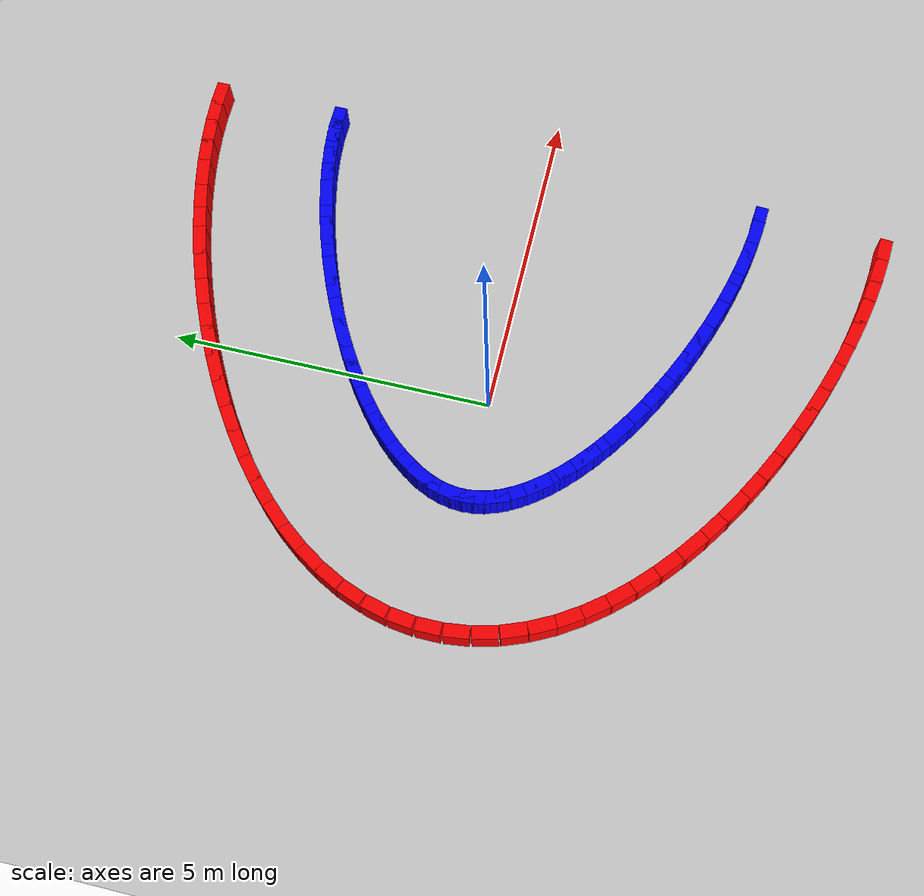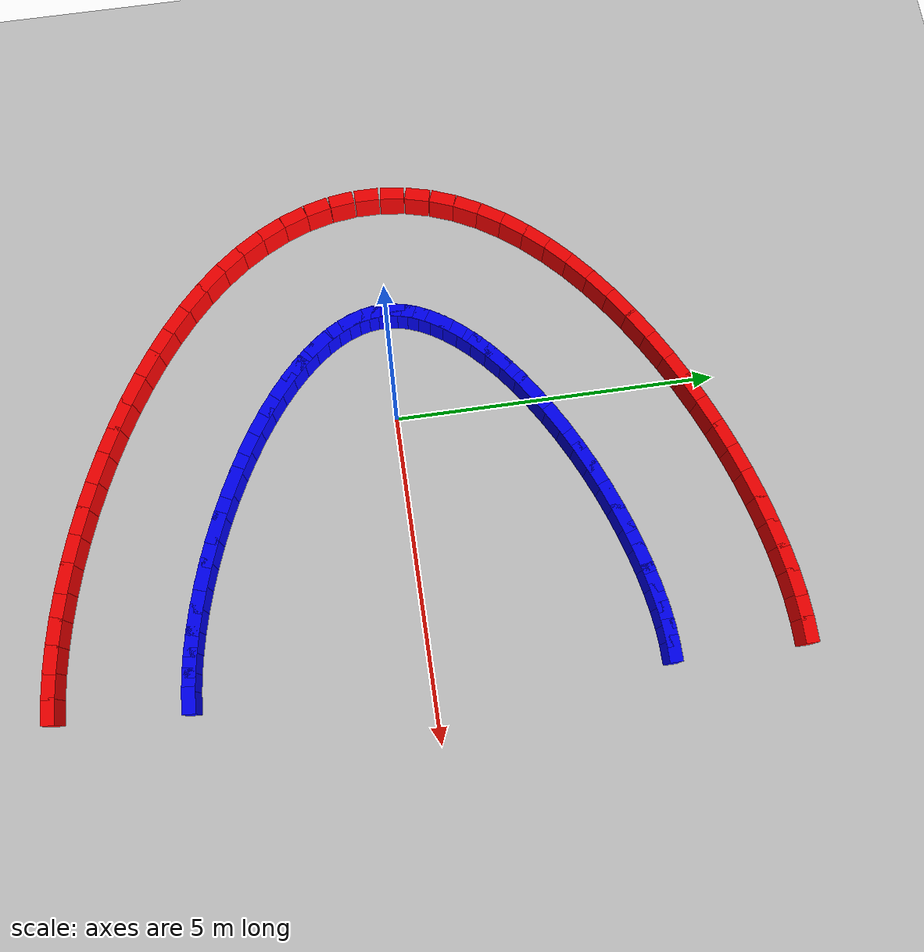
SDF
<sdf version="1.9">
 <world name="kidney_track">
  <model name="ground_plane">
   <static>true</static>
   <link name="link">
    <collision name="collision">
     <geometry><plane><normal>0 0 1</normal><size>100 100</size></plane></geometry>
    </collision>
    <visual name="visual">
     <geometry><plane><normal>0 0 1</normal><size>100 100</size></plane></geometry>
     <material><ambient>0.8 0.8 0.8 1</ambient><diffuse>0.8 0.8 0.8 1</diffuse></material>
    </visual>
   </link>
  </model>
  <model name="track">
   <static>true</static>
   <link name="outer_25">
    <pose>4.1250 5.5000 0.25 0 0 3.1416</pose>
    <collision name="col"><geometry><box><size>0.3916 0.2 0.5</size></box></geometry></collision>
    <visual name="vis">
     <geometry><box><size>0.3916 0.2 0.5</size></box></geometry>
     <material><ambient>1 0 0 1</ambient></material>
    </visual>
   </link>
   <link name="inner_25">
    <pose>4.1250 3.5000 0.25 0 0 3.1416</pose>
    <collision name="col"><geometry><box><size>0.3916 0.2 0.5</size></box></geometry></collision>
    <visual name="vis">
     <geometry><box><size>0.3916 0.2 0.5</size></box></geometry>
     <material><ambient>0 0 1 1</ambient></material>
    </visual>
   </link>
   <link name="outer_26">
    <pose>3.7745 5.4894 0.25 0 0 -3.0825</pose>
    <collision name="col"><geometry><box><size>0.4091 0.2 0.5</size></box></geometry></collision>
    <visual name="vis">
     <geometry><box><size>0.4091 0.2 0.5</size></box></geometry>
     <material><ambient>1 0 0 1</ambient></material>
    </visual>
   </link>
   <link name="inner_26">
    <pose>3.8927 3.4929 0.25 0 0 -3.0825</pose>
    <collision name="col"><geometry><box><size>0.4091 0.2 0.5</size></box></geometry></collision>
    <visual name="vis">
     <geometry><box><size>0.4091 0.2 0.5</size></box></geometry>
     <material><ambient>0 0 1 1</ambient></material>
    </visual>
   </link>
   <link name="outer_27">
    <pose>3.4141 5.4583 0.25 0 0 -3.0298</pose>
    <collision name="col"><geometry><box><size>0.4259 0.2 0.5</size></box></geometry></collision>
    <visual name="vis">
     <geometry><box><size>0.4259 0.2 0.5</size></box></geometry>
     <material><ambient>1 0 0 1</ambient></material>
    </visual>
   </link>
   <link name="inner_27">
    <pose>3.6372 3.4708 0.25 0 0 -3.0298</pose>
    <collision name="col"><geometry><box><size>0.4259 0.2 0.5</size></box></geometry></collision>
    <visual name="vis">
     <geometry><box><size>0.4259 0.2 0.5</size></box></geometry>
     <material><ambient>0 0 1 1</ambient></material>
    </visual>
   </link>
   <link name="outer_28">
    <pose>3.0442 5.4076 0.25 0 0 -2.9823</pose>
    <collision name="col"><geometry><box><size>0.4417 0.2 0.5</size></box></geometry></collision>
    <visual name="vis">
     <geometry><box><size>0.4417 0.2 0.5</size></box></geometry>
     <material><ambient>1 0 0 1</ambient></material>
    </visual>
   </link>
   <link name="inner_28">
    <pose>3.3614 3.4330 0.25 0 0 -2.9823</pose>
    <collision name="col"><geometry><box><size>0.4417 0.2 0.5</size></box></geometry></collision>
    <visual name="vis">
     <geometry><box><size>0.4417 0.2 0.5</size></box></geometry>
     <material><ambient>0 0 1 1</ambient></material>
    </visual>
   </link>
   <link name="outer_29">
    <pose>2.6653 5.3381 0.25 0 0 -2.9388</pose>
    <collision name="col"><geometry><box><size>0.4560 0.2 0.5</size></box></geometry></collision>
    <visual name="vis">
     <geometry><box><size>0.4560 0.2 0.5</size></box></geometry>
     <material><ambient>1 0 0 1</ambient></material>
    </visual>
   </link>
   <link name="inner_29">
    <pose>3.0681 3.3791 0.25 0 0 -2.9388</pose>
    <collision name="col"><geometry><box><size>0.4560 0.2 0.5</size></box></geometry></collision>
    <visual name="vis">
     <geometry><box><size>0.4560 0.2 0.5</size></box></geometry>
     <material><ambient>0 0 1 1</ambient></material>
    </visual>
   </link>
   <link name="outer_30">
    <pose>2.2787 5.2503 0.25 0 0 -2.8983</pose>
    <collision name="col"><geometry><box><size>0.4687 0.2 0.5</size></box></geometry></collision>
    <visual name="vis">
     <geometry><box><size>0.4687 0.2 0.5</size></box></geometry>
     <material><ambient>1 0 0 1</ambient></material>
    </visual>
   </link>
   <link name="inner_30">
    <pose>2.7605 3.3092 0.25 0 0 -2.8983</pose>
    <collision name="col"><geometry><box><size>0.4687 0.2 0.5</size></box></geometry></collision>
    <visual name="vis">
     <geometry><box><size>0.4687 0.2 0.5</size></box></geometry>
     <material><ambient>0 0 1 1</ambient></material>
    </visual>
   </link>
   <link name="outer_31">
    <pose>1.8855 5.1446 0.25 0 0 -2.8599</pose>
    <collision name="col"><geometry><box><size>0.4794 0.2 0.5</size></box></geometry></collision>
    <visual name="vis">
     <geometry><box><size>0.4794 0.2 0.5</size></box></geometry>
     <material><ambient>1 0 0 1</ambient></material>
    </visual>
   </link>
   <link name="inner_31">
    <pose>2.4415 3.2234 0.25 0 0 -2.8599</pose>
    <collision name="col"><geometry><box><size>0.4794 0.2 0.5</size></box></geometry></collision>
    <visual name="vis">
     <geometry><box><size>0.4794 0.2 0.5</size></box></geometry>
     <material><ambient>0 0 1 1</ambient></material>
    </visual>
   </link>
   <link name="outer_32">
    <pose>1.4877 5.0213 0.25 0 0 -2.8228</pose>
    <collision name="col"><geometry><box><size>0.4880 0.2 0.5</size></box></geometry></collision>
    <visual name="vis">
     <geometry><box><size>0.4880 0.2 0.5</size></box></geometry>
     <material><ambient>1 0 0 1</ambient></material>
    </visual>
   </link>
   <link name="inner_32">
    <pose>2.1145 3.1221 0.25 0 0 -2.8228</pose>
    <collision name="col"><geometry><box><size>0.4880 0.2 0.5</size></box></geometry></collision>
    <visual name="vis">
     <geometry><box><size>0.4880 0.2 0.5</size></box></geometry>
     <material><ambient>0 0 1 1</ambient></material>
    </visual>
   </link>
   <link name="outer_33">
    <pose>1.0871 4.8809 0.25 0 0 -2.7863</pose>
    <collision name="col"><geometry><box><size>0.4943 0.2 0.5</size></box></geometry></collision>
    <visual name="vis">
     <geometry><box><size>0.4943 0.2 0.5</size></box></geometry>
     <material><ambient>1 0 0 1</ambient></material>
    </visual>
   </link>
   <link name="inner_33">
    <pose>1.7828 3.0058 0.25 0 0 -2.7863</pose>
    <collision name="col"><geometry><box><size>0.4943 0.2 0.5</size></box></geometry></collision>
    <visual name="vis">
     <geometry><box><size>0.4943 0.2 0.5</size></box></geometry>
     <material><ambient>0 0 1 1</ambient></material>
    </visual>
   </link>
   <link name="outer_34">
    <pose>0.6859 4.7237 0.25 0 0 -2.7497</pose>
    <collision name="col"><geometry><box><size>0.4982 0.2 0.5</size></box></geometry></collision>
    <visual name="vis">
     <geometry><box><size>0.4982 0.2 0.5</size></box></geometry>
     <material><ambient>1 0 0 1</ambient></material>
    </visual>
   </link>
   <link name="inner_34">
    <pose>1.4497 2.8753 0.25 0 0 -2.7497</pose>
    <collision name="col"><geometry><box><size>0.4982 0.2 0.5</size></box></geometry></collision>
    <visual name="vis">
     <geometry><box><size>0.4982 0.2 0.5</size></box></geometry>
     <material><ambient>0 0 1 1</ambient></material>
    </visual>
   </link>
   <link name="outer_35">
    <pose>0.2865 4.5499 0.25 0 0 -2.7124</pose>
    <collision name="col"><geometry><box><size>0.4997 0.2 0.5</size></box></geometry></collision>
    <visual name="vis">
     <geometry><box><size>0.4997 0.2 0.5</size></box></geometry>
     <material><ambient>1 0 0 1</ambient></material>
    </visual>
   </link>
   <link name="inner_35">
    <pose>1.1187 2.7313 0.25 0 0 -2.7124</pose>
    <collision name="col"><geometry><box><size>0.4997 0.2 0.5</size></box></geometry></collision>
    <visual name="vis">
     <geometry><box><size>0.4997 0.2 0.5</size></box></geometry>
     <material><ambient>0 0 1 1</ambient></material>
    </visual>
   </link>
   <link name="outer_36">
    <pose>-0.1086 4.3599 0.25 0 0 -2.6738</pose>
    <collision name="col"><geometry><box><size>0.4988 0.2 0.5</size></box></geometry></collision>
    <visual name="vis">
     <geometry><box><size>0.4988 0.2 0.5</size></box></geometry>
     <material><ambient>1 0 0 1</ambient></material>
    </visual>
   </link>
   <link name="inner_36">
    <pose>0.7933 2.5748 0.25 0 0 -2.6738</pose>
    <collision name="col"><geometry><box><size>0.4988 0.2 0.5</size></box></geometry></collision>
    <visual name="vis">
     <geometry><box><size>0.4988 0.2 0.5</size></box></geometry>
     <material><ambient>0 0 1 1</ambient></material>
    </visual>
   </link>
   <link name="outer_37">
    <pose>-0.4967 4.1538 0.25 0 0 -2.6330</pose>
    <collision name="col"><geometry><box><size>0.4954 0.2 0.5</size></box></geometry></collision>
    <visual name="vis">
     <geometry><box><size>0.4954 0.2 0.5</size></box></geometry>
     <material><ambient>1 0 0 1</ambient></material>
    </visual>
   </link>
   <link name="inner_37">
    <pose>0.4771 2.4069 0.25 0 0 -2.6330</pose>
    <collision name="col"><geometry><box><size>0.4954 0.2 0.5</size></box></geometry></collision>
    <visual name="vis">
     <geometry><box><size>0.4954 0.2 0.5</size></box></geometry>
     <material><ambient>0 0 1 1</ambient></material>
    </visual>
   </link>
   <link name="outer_38">
    <pose>-0.8754 3.9319 0.25 0 0 -2.5895</pose>
    <collision name="col"><geometry><box><size>0.4898 0.2 0.5</size></box></geometry></collision>
    <visual name="vis">
     <geometry><box><size>0.4898 0.2 0.5</size></box></geometry>
     <material><ambient>1 0 0 1</ambient></material>
    </visual>
   </link>
   <link name="inner_38">
    <pose>0.1734 2.2290 0.25 0 0 -2.5895</pose>
    <collision name="col"><geometry><box><size>0.4898 0.2 0.5</size></box></geometry></collision>
    <visual name="vis">
     <geometry><box><size>0.4898 0.2 0.5</size></box></geometry>
     <material><ambient>0 0 1 1</ambient></material>
    </visual>
   </link>
   <link name="outer_39">
    <pose>-1.2420 3.6943 0.25 0 0 -2.5425</pose>
    <collision name="col"><geometry><box><size>0.4822 0.2 0.5</size></box></geometry></collision>
    <visual name="vis">
     <geometry><box><size>0.4822 0.2 0.5</size></box></geometry>
     <material><ambient>1 0 0 1</ambient></material>
    </visual>
   </link>
   <link name="inner_39">
    <pose>-0.1143 2.0425 0.25 0 0 -2.5425</pose>
    <collision name="col"><geometry><box><size>0.4822 0.2 0.5</size></box></geometry></collision>
    <visual name="vis">
     <geometry><box><size>0.4822 0.2 0.5</size></box></geometry>
     <material><ambient>0 0 1 1</ambient></material>
    </visual>
   </link>
   <link name="outer_40">
    <pose>-1.5937 3.4409 0.25 0 0 -2.4912</pose>
    <collision name="col"><geometry><box><size>0.4727 0.2 0.5</size></box></geometry></collision>
    <visual name="vis">
     <geometry><box><size>0.4727 0.2 0.5</size></box></geometry>
     <material><ambient>1 0 0 1</ambient></material>
    </visual>
   </link>
   <link name="inner_40">
    <pose>-0.3827 1.8492 0.25 0 0 -2.4912</pose>
    <collision name="col"><geometry><box><size>0.4727 0.2 0.5</size></box></geometry></collision>
    <visual name="vis">
     <geometry><box><size>0.4727 0.2 0.5</size></box></geometry>
     <material><ambient>0 0 1 1</ambient></material>
    </visual>
   </link>
   <link name="outer_41">
    <pose>-1.9281 3.1715 0.25 0 0 -2.4346</pose>
    <collision name="col"><geometry><box><size>0.4618 0.2 0.5</size></box></geometry></collision>
    <visual name="vis">
     <geometry><box><size>0.4618 0.2 0.5</size></box></geometry>
     <material><ambient>1 0 0 1</ambient></material>
    </visual>
   </link>
   <link name="inner_41">
    <pose>-0.6289 1.6509 0.25 0 0 -2.4346</pose>
    <collision name="col"><geometry><box><size>0.4618 0.2 0.5</size></box></geometry></collision>
    <visual name="vis">
     <geometry><box><size>0.4618 0.2 0.5</size></box></geometry>
     <material><ambient>0 0 1 1</ambient></material>
    </visual>
   </link>
   <link name="outer_42">
    <pose>-2.2422 2.8859 0.25 0 0 -2.3717</pose>
    <collision name="col"><geometry><box><size>0.4497 0.2 0.5</size></box></geometry></collision>
    <visual name="vis">
     <geometry><box><size>0.4497 0.2 0.5</size></box></geometry>
     <material><ambient>1 0 0 1</ambient></material>
    </visual>
   </link>
   <link name="inner_42">
    <pose>-0.8501 1.4499 0.25 0 0 -2.3717</pose>
    <collision name="col"><geometry><box><size>0.4497 0.2 0.5</size></box></geometry></collision>
    <visual name="vis">
     <geometry><box><size>0.4497 0.2 0.5</size></box></geometry>
     <material><ambient>0 0 1 1</ambient></material>
    </visual>
   </link>
   <link name="outer_43">
    <pose>-2.5335 2.5835 0.25 0 0 -2.3016</pose>
    <collision name="col"><geometry><box><size>0.4371 0.2 0.5</size></box></geometry></collision>
    <visual name="vis">
     <geometry><box><size>0.4371 0.2 0.5</size></box></geometry>
     <material><ambient>1 0 0 1</ambient></material>
    </visual>
   </link>
   <link name="inner_43">
    <pose>-1.0442 1.2486 0.25 0 0 -2.3016</pose>
    <collision name="col"><geometry><box><size>0.4371 0.2 0.5</size></box></geometry></collision>
    <visual name="vis">
     <geometry><box><size>0.4371 0.2 0.5</size></box></geometry>
     <material><ambient>0 0 1 1</ambient></material>
    </visual>
   </link>
   <link name="outer_44">
    <pose>-2.7987 2.2637 0.25 0 0 -2.2232</pose>
    <collision name="col"><geometry><box><size>0.4245 0.2 0.5</size></box></geometry></collision>
    <visual name="vis">
     <geometry><box><size>0.4245 0.2 0.5</size></box></geometry>
     <material><ambient>1 0 0 1</ambient></material>
    </visual>
   </link>
   <link name="inner_44">
    <pose>-1.2095 1.0494 0.25 0 0 -2.2232</pose>
    <collision name="col"><geometry><box><size>0.4245 0.2 0.5</size></box></geometry></collision>
    <visual name="vis">
     <geometry><box><size>0.4245 0.2 0.5</size></box></geometry>
     <material><ambient>0 0 1 1</ambient></material>
    </visual>
   </link>
   <link name="outer_45">
    <pose>-3.0345 1.9260 0.25 0 0 -2.1358</pose>
    <collision name="col"><geometry><box><size>0.4124 0.2 0.5</size></box></geometry></collision>
    <visual name="vis">
     <geometry><box><size>0.4124 0.2 0.5</size></box></geometry>
     <material><ambient>1 0 0 1</ambient></material>
    </visual>
   </link>
   <link name="inner_45">
    <pose>-1.3453 0.8552 0.25 0 0 -2.1358</pose>
    <collision name="col"><geometry><box><size>0.4124 0.2 0.5</size></box></geometry></collision>
    <visual name="vis">
     <geometry><box><size>0.4124 0.2 0.5</size></box></geometry>
     <material><ambient>0 0 1 1</ambient></material>
    </visual>
   </link>
   <link name="outer_46">
    <pose>-3.2369 1.5702 0.25 0 0 -2.0388</pose>
    <collision name="col"><geometry><box><size>0.4016 0.2 0.5</size></box></geometry></collision>
    <visual name="vis">
     <geometry><box><size>0.4016 0.2 0.5</size></box></geometry>
     <material><ambient>1 0 0 1</ambient></material>
    </visual>
   </link>
   <link name="inner_46">
    <pose>-1.4520 0.6680 0.25 0 0 -2.0388</pose>
    <collision name="col"><geometry><box><size>0.4016 0.2 0.5</size></box></geometry></collision>
    <visual name="vis">
     <geometry><box><size>0.4016 0.2 0.5</size></box></geometry>
     <material><ambient>0 0 1 1</ambient></material>
    </visual>
   </link>
   <link name="outer_47">
    <pose>-3.4017 1.1969 0.25 0 0 -1.9323</pose>
    <collision name="col"><geometry><box><size>0.3927 0.2 0.5</size></box></geometry></collision>
    <visual name="vis">
     <geometry><box><size>0.3927 0.2 0.5</size></box></geometry>
     <material><ambient>1 0 0 1</ambient></material>
    </visual>
   </link>
   <link name="inner_47">
    <pose>-1.5309 0.4895 0.25 0 0 -1.9323</pose>
    <collision name="col"><geometry><box><size>0.3927 0.2 0.5</size></box></geometry></collision>
    <visual name="vis">
     <geometry><box><size>0.3927 0.2 0.5</size></box></geometry>
     <material><ambient>0 0 1 1</ambient></material>
    </visual>
   </link>
   <link name="outer_48">
    <pose>-3.5239 0.8080 0.25 0 0 -1.8173</pose>
    <collision name="col"><geometry><box><size>0.3864 0.2 0.5</size></box></geometry></collision>
    <visual name="vis">
     <geometry><box><size>0.3864 0.2 0.5</size></box></geometry>
     <material><ambient>1 0 0 1</ambient></material>
    </visual>
   </link>
   <link name="inner_48">
    <pose>-1.5844 0.3200 0.25 0 0 -1.8173</pose>
    <collision name="col"><geometry><box><size>0.3864 0.2 0.5</size></box></geometry></collision>
    <visual name="vis">
     <geometry><box><size>0.3864 0.2 0.5</size></box></geometry>
     <material><ambient>0 0 1 1</ambient></material>
    </visual>
   </link>
   <link name="outer_49">
    <pose>-3.5994 0.4073 0.25 0 0 -1.6958</pose>
    <collision name="col"><geometry><box><size>0.3831 0.2 0.5</size></box></geometry></collision>
    <visual name="vis">
     <geometry><box><size>0.3831 0.2 0.5</size></box></geometry>
     <material><ambient>1 0 0 1</ambient></material>
    </visual>
   </link>
   <link name="inner_49">
    <pose>-1.6151 0.1578 0.25 0 0 -1.6958</pose>
    <collision name="col"><geometry><box><size>0.3831 0.2 0.5</size></box></geometry></collision>
    <visual name="vis">
     <geometry><box><size>0.3831 0.2 0.5</size></box></geometry>
     <material><ambient>0 0 1 1</ambient></material>
    </visual>
   </link>
   <link name="outer_50">
    <pose>-3.6250 0.0000 0.25 0 0 -1.5708</pose>
    <collision name="col"><geometry><box><size>0.3831 0.2 0.5</size></box></geometry></collision>
    <visual name="vis">
     <geometry><box><size>0.3831 0.2 0.5</size></box></geometry>
     <material><ambient>1 0 0 1</ambient></material>
    </visual>
   </link>
   <link name="inner_50">
    <pose>-1.6250 0.0000 0.25 0 0 -1.5708</pose>
    <collision name="col"><geometry><box><size>0.3831 0.2 0.5</size></box></geometry></collision>
    <visual name="vis">
     <geometry><box><size>0.3831 0.2 0.5</size></box></geometry>
     <material><ambient>0 0 1 1</ambient></material>
    </visual>
   </link>
   <link name="outer_51">
    <pose>-3.5994 -0.4073 0.25 0 0 -1.4458</pose>
    <collision name="col"><geometry><box><size>0.3864 0.2 0.5</size></box></geometry></collision>
    <visual name="vis">
     <geometry><box><size>0.3864 0.2 0.5</size></box></geometry>
     <material><ambient>1 0 0 1</ambient></material>
    </visual>
   </link>
   <link name="inner_51">
    <pose>-1.6151 -0.1578 0.25 0 0 -1.4458</pose>
    <collision name="col"><geometry><box><size>0.3864 0.2 0.5</size></box></geometry></collision>
    <visual name="vis">
     <geometry><box><size>0.3864 0.2 0.5</size></box></geometry>
     <material><ambient>0 0 1 1</ambient></material>
    </visual>
   </link>
   <link name="outer_52">
    <pose>-3.5239 -0.8080 0.25 0 0 -1.3243</pose>
    <collision name="col"><geometry><box><size>0.3927 0.2 0.5</size></box></geometry></collision>
    <visual name="vis">
     <geometry><box><size>0.3927 0.2 0.5</size></box></geometry>
     <material><ambient>1 0 0 1</ambient></material>
    </visual>
   </link>
   <link name="inner_52">
    <pose>-1.5844 -0.3200 0.25 0 0 -1.3243</pose>
    <collision name="col"><geometry><box><size>0.3927 0.2 0.5</size></box></geometry></collision>
    <visual name="vis">
     <geometry><box><size>0.3927 0.2 0.5</size></box></geometry>
     <material><ambient>0 0 1 1</ambient></material>
    </visual>
   </link>
   <link name="outer_53">
    <pose>-3.4017 -1.1969 0.25 0 0 -1.2093</pose>
    <collision name="col"><geometry><box><size>0.4016 0.2 0.5</size></box></geometry></collision>
    <visual name="vis">
     <geometry><box><size>0.4016 0.2 0.5</size></box></geometry>
     <material><ambient>1 0 0 1</ambient></material>
    </visual>
   </link>
   <link name="inner_53">
    <pose>-1.5309 -0.4895 0.25 0 0 -1.2093</pose>
    <collision name="col"><geometry><box><size>0.4016 0.2 0.5</size></box></geometry></collision>
    <visual name="vis">
     <geometry><box><size>0.4016 0.2 0.5</size></box></geometry>
     <material><ambient>0 0 1 1</ambient></material>
    </visual>
   </link>
   <link name="outer_54">
    <pose>-3.2369 -1.5702 0.25 0 0 -1.1028</pose>
    <collision name="col"><geometry><box><size>0.4124 0.2 0.5</size></box></geometry></collision>
    <visual name="vis">
     <geometry><box><size>0.4124 0.2 0.5</size></box></geometry>
     <material><ambient>1 0 0 1</ambient></material>
    </visual>
   </link>
   <link name="inner_54">
    <pose>-1.4520 -0.6680 0.25 0 0 -1.1028</pose>
    <collision name="col"><geometry><box><size>0.4124 0.2 0.5</size></box></geometry></collision>
    <visual name="vis">
     <geometry><box><size>0.4124 0.2 0.5</size></box></geometry>
     <material><ambient>0 0 1 1</ambient></material>
    </visual>
   </link>
   <link name="outer_55">
    <pose>-3.0345 -1.9260 0.25 0 0 -1.0058</pose>
    <collision name="col"><geometry><box><size>0.4245 0.2 0.5</size></box></geometry></collision>
    <visual name="vis">
     <geometry><box><size>0.4245 0.2 0.5</size></box></geometry>
     <material><ambient>1 0 0 1</ambient></material>
    </visual>
   </link>
   <link name="inner_55">
    <pose>-1.3453 -0.8552 0.25 0 0 -1.0058</pose>
    <collision name="col"><geometry><box><size>0.4245 0.2 0.5</size></box></geometry></collision>
    <visual name="vis">
     <geometry><box><size>0.4245 0.2 0.5</size></box></geometry>
     <material><ambient>0 0 1 1</ambient></material>
    </visual>
   </link>
   <link name="outer_56">
    <pose>-2.7987 -2.2637 0.25 0 0 -0.9184</pose>
    <collision name="col"><geometry><box><size>0.4371 0.2 0.5</size></box></geometry></collision>
    <visual name="vis">
     <geometry><box><size>0.4371 0.2 0.5</size></box></geometry>
     <material><ambient>1 0 0 1</ambient></material>
    </visual>
   </link>
   <link name="inner_56">
    <pose>-1.2095 -1.0494 0.25 0 0 -0.9184</pose>
    <collision name="col"><geometry><box><size>0.4371 0.2 0.5</size></box></geometry></collision>
    <visual name="vis">
     <geometry><box><size>0.4371 0.2 0.5</size></box></geometry>
     <material><ambient>0 0 1 1</ambient></material>
    </visual>
   </link>
   <link name="outer_57">
    <pose>-2.5335 -2.5835 0.25 0 0 -0.8400</pose>
    <collision name="col"><geometry><box><size>0.4497 0.2 0.5</size></box></geometry></collision>
    <visual name="vis">
     <geometry><box><size>0.4497 0.2 0.5</size></box></geometry>
     <material><ambient>1 0 0 1</ambient></material>
    </visual>
   </link>
   <link name="inner_57">
    <pose>-1.0442 -1.2486 0.25 0 0 -0.8400</pose>
    <collision name="col"><geometry><box><size>0.4497 0.2 0.5</size></box></geometry></collision>
    <visual name="vis">
     <geometry><box><size>0.4497 0.2 0.5</size></box></geometry>
     <material><ambient>0 0 1 1</ambient></material>
    </visual>
   </link>
   <link name="outer_58">
    <pose>-2.2422 -2.8859 0.25 0 0 -0.7699</pose>
    <collision name="col"><geometry><box><size>0.4618 0.2 0.5</size></box></geometry></collision>
    <visual name="vis">
     <geometry><box><size>0.4618 0.2 0.5</size></box></geometry>
     <material><ambient>1 0 0 1</ambient></material>
    </visual>
   </link>
   <link name="inner_58">
    <pose>-0.8501 -1.4499 0.25 0 0 -0.7699</pose>
    <collision name="col"><geometry><box><size>0.4618 0.2 0.5</size></box></geometry></collision>
    <visual name="vis">
     <geometry><box><size>0.4618 0.2 0.5</size></box></geometry>
     <material><ambient>0 0 1 1</ambient></material>
    </visual>
   </link>
   <link name="outer_59">
    <pose>-1.9281 -3.1715 0.25 0 0 -0.7070</pose>
    <collision name="col"><geometry><box><size>0.4727 0.2 0.5</size></box></geometry></collision>
    <visual name="vis">
     <geometry><box><size>0.4727 0.2 0.5</size></box></geometry>
     <material><ambient>1 0 0 1</ambient></material>
    </visual>
   </link>
   <link name="inner_59">
    <pose>-0.6289 -1.6509 0.25 0 0 -0.7070</pose>
    <collision name="col"><geometry><box><size>0.4727 0.2 0.5</size></box></geometry></collision>
    <visual name="vis">
     <geometry><box><size>0.4727 0.2 0.5</size></box></geometry>
     <material><ambient>0 0 1 1</ambient></material>
    </visual>
   </link>
   <link name="outer_60">
    <pose>-1.5937 -3.4409 0.25 0 0 -0.6504</pose>
    <collision name="col"><geometry><box><size>0.4822 0.2 0.5</size></box></geometry></collision>
    <visual name="vis">
     <geometry><box><size>0.4822 0.2 0.5</size></box></geometry>
     <material><ambient>1 0 0 1</ambient></material>
    </visual>
   </link>
   <link name="inner_60">
    <pose>-0.3827 -1.8492 0.25 0 0 -0.6504</pose>
    <collision name="col"><geometry><box><size>0.4822 0.2 0.5</size></box></geometry></collision>
    <visual name="vis">
     <geometry><box><size>0.4822 0.2 0.5</size></box></geometry>
     <material><ambient>0 0 1 1</ambient></material>
    </visual>
   </link>
   <link name="outer_61">
    <pose>-1.2420 -3.6943 0.25 0 0 -0.5991</pose>
    <collision name="col"><geometry><box><size>0.4898 0.2 0.5</size></box></geometry></collision>
    <visual name="vis">
     <geometry><box><size>0.4898 0.2 0.5</size></box></geometry>
     <material><ambient>1 0 0 1</ambient></material>
    </visual>
   </link>
   <link name="inner_61">
    <pose>-0.1143 -2.0425 0.25 0 0 -0.5991</pose>
    <collision name="col"><geometry><box><size>0.4898 0.2 0.5</size></box></geometry></collision>
    <visual name="vis">
     <geometry><box><size>0.4898 0.2 0.5</size></box></geometry>
     <material><ambient>0 0 1 1</ambient></material>
    </visual>
   </link>
   <link name="outer_62">
    <pose>-0.8754 -3.9319 0.25 0 0 -0.5520</pose>
    <collision name="col"><geometry><box><size>0.4954 0.2 0.5</size></box></geometry></collision>
    <visual name="vis">
     <geometry><box><size>0.4954 0.2 0.5</size></box></geometry>
     <material><ambient>1 0 0 1</ambient></material>
    </visual>
   </link>
   <link name="inner_62">
    <pose>0.1734 -2.2290 0.25 0 0 -0.5520</pose>
    <collision name="col"><geometry><box><size>0.4954 0.2 0.5</size></box></geometry></collision>
    <visual name="vis">
     <geometry><box><size>0.4954 0.2 0.5</size></box></geometry>
     <material><ambient>0 0 1 1</ambient></material>
    </visual>
   </link>
   <link name="outer_63">
    <pose>-0.4967 -4.1538 0.25 0 0 -0.5086</pose>
    <collision name="col"><geometry><box><size>0.4988 0.2 0.5</size></box></geometry></collision>
    <visual name="vis">
     <geometry><box><size>0.4988 0.2 0.5</size></box></geometry>
     <material><ambient>1 0 0 1</ambient></material>
    </visual>
   </link>
   <link name="inner_63">
    <pose>0.4771 -2.4069 0.25 0 0 -0.5086</pose>
    <collision name="col"><geometry><box><size>0.4988 0.2 0.5</size></box></geometry></collision>
    <visual name="vis">
     <geometry><box><size>0.4988 0.2 0.5</size></box></geometry>
     <material><ambient>0 0 1 1</ambient></material>
    </visual>
   </link>
   <link name="outer_64">
    <pose>-0.1086 -4.3599 0.25 0 0 -0.4678</pose>
    <collision name="col"><geometry><box><size>0.4997 0.2 0.5</size></box></geometry></collision>
    <visual name="vis">
     <geometry><box><size>0.4997 0.2 0.5</size></box></geometry>
     <material><ambient>1 0 0 1</ambient></material>
    </visual>
   </link>
   <link name="inner_64">
    <pose>0.7933 -2.5748 0.25 0 0 -0.4678</pose>
    <collision name="col"><geometry><box><size>0.4997 0.2 0.5</size></box></geometry></collision>
    <visual name="vis">
     <geometry><box><size>0.4997 0.2 0.5</size></box></geometry>
     <material><ambient>0 0 1 1</ambient></material>
    </visual>
   </link>
   <link name="outer_65">
    <pose>0.2865 -4.5499 0.25 0 0 -0.4291</pose>
    <collision name="col"><geometry><box><size>0.4982 0.2 0.5</size></box></geometry></collision>
    <visual name="vis">
     <geometry><box><size>0.4982 0.2 0.5</size></box></geometry>
     <material><ambient>1 0 0 1</ambient></material>
    </visual>
   </link>
   <link name="inner_65">
    <pose>1.1187 -2.7313 0.25 0 0 -0.4291</pose>
    <collision name="col"><geometry><box><size>0.4982 0.2 0.5</size></box></geometry></collision>
    <visual name="vis">
     <geometry><box><size>0.4982 0.2 0.5</size></box></geometry>
     <material><ambient>0 0 1 1</ambient></material>
    </visual>
   </link>
   <link name="outer_66">
    <pose>0.6859 -4.7237 0.25 0 0 -0.3918</pose>
    <collision name="col"><geometry><box><size>0.4943 0.2 0.5</size></box></geometry></collision>
    <visual name="vis">
     <geometry><box><size>0.4943 0.2 0.5</size></box></geometry>
     <material><ambient>1 0 0 1</ambient></material>
    </visual>
   </link>
   <link name="inner_66">
    <pose>1.4497 -2.8753 0.25 0 0 -0.3918</pose>
    <collision name="col"><geometry><box><size>0.4943 0.2 0.5</size></box></geometry></collision>
    <visual name="vis">
     <geometry><box><size>0.4943 0.2 0.5</size></box></geometry>
     <material><ambient>0 0 1 1</ambient></material>
    </visual>
   </link>
   <link name="outer_67">
    <pose>1.0871 -4.8809 0.25 0 0 -0.3553</pose>
    <collision name="col"><geometry><box><size>0.4880 0.2 0.5</size></box></geometry></collision>
    <visual name="vis">
     <geometry><box><size>0.4880 0.2 0.5</size></box></geometry>
     <material><ambient>1 0 0 1</ambient></material>
    </visual>
   </link>
   <link name="inner_67">
    <pose>1.7828 -3.0058 0.25 0 0 -0.3553</pose>
    <collision name="col"><geometry><box><size>0.4880 0.2 0.5</size></box></geometry></collision>
    <visual name="vis">
     <geometry><box><size>0.4880 0.2 0.5</size></box></geometry>
     <material><ambient>0 0 1 1</ambient></material>
    </visual>
   </link>
   <link name="outer_68">
    <pose>1.4877 -5.0213 0.25 0 0 -0.3188</pose>
    <collision name="col"><geometry><box><size>0.4794 0.2 0.5</size></box></geometry></collision>
    <visual name="vis">
     <geometry><box><size>0.4794 0.2 0.5</size></box></geometry>
     <material><ambient>1 0 0 1</ambient></material>
    </visual>
   </link>
   <link name="inner_68">
    <pose>2.1145 -3.1221 0.25 0 0 -0.3188</pose>
    <collision name="col"><geometry><box><size>0.4794 0.2 0.5</size></box></geometry></collision>
    <visual name="vis">
     <geometry><box><size>0.4794 0.2 0.5</size></box></geometry>
     <material><ambient>0 0 1 1</ambient></material>
    </visual>
   </link>
   <link name="outer_69">
    <pose>1.8855 -5.1446 0.25 0 0 -0.2817</pose>
    <collision name="col"><geometry><box><size>0.4687 0.2 0.5</size></box></geometry></collision>
    <visual name="vis">
     <geometry><box><size>0.4687 0.2 0.5</size></box></geometry>
     <material><ambient>1 0 0 1</ambient></material>
    </visual>
   </link>
   <link name="inner_69">
    <pose>2.4415 -3.2234 0.25 0 0 -0.2817</pose>
    <collision name="col"><geometry><box><size>0.4687 0.2 0.5</size></box></geometry></collision>
    <visual name="vis">
     <geometry><box><size>0.4687 0.2 0.5</size></box></geometry>
     <material><ambient>0 0 1 1</ambient></material>
    </visual>
   </link>
   <link name="outer_70">
    <pose>2.2787 -5.2503 0.25 0 0 -0.2433</pose>
    <collision name="col"><geometry><box><size>0.4560 0.2 0.5</size></box></geometry></collision>
    <visual name="vis">
     <geometry><box><size>0.4560 0.2 0.5</size></box></geometry>
     <material><ambient>1 0 0 1</ambient></material>
    </visual>
   </link>
   <link name="inner_70">
    <pose>2.7605 -3.3092 0.25 0 0 -0.2433</pose>
    <collision name="col"><geometry><box><size>0.4560 0.2 0.5</size></box></geometry></collision>
    <visual name="vis">
     <geometry><box><size>0.4560 0.2 0.5</size></box></geometry>
     <material><ambient>0 0 1 1</ambient></material>
    </visual>
   </link>
   <link name="outer_71">
    <pose>2.6653 -5.3381 0.25 0 0 -0.2028</pose>
    <collision name="col"><geometry><box><size>0.4417 0.2 0.5</size></box></geometry></collision>
    <visual name="vis">
     <geometry><box><size>0.4417 0.2 0.5</size></box></geometry>
     <material><ambient>1 0 0 1</ambient></material>
    </visual>
   </link>
   <link name="inner_71">
    <pose>3.0681 -3.3791 0.25 0 0 -0.2028</pose>
    <collision name="col"><geometry><box><size>0.4417 0.2 0.5</size></box></geometry></collision>
    <visual name="vis">
     <geometry><box><size>0.4417 0.2 0.5</size></box></geometry>
     <material><ambient>0 0 1 1</ambient></material>
    </visual>
   </link>
   <link name="outer_72">
    <pose>3.0442 -5.4076 0.25 0 0 -0.1593</pose>
    <collision name="col"><geometry><box><size>0.4259 0.2 0.5</size></box></geometry></collision>
    <visual name="vis">
     <geometry><box><size>0.4259 0.2 0.5</size></box></geometry>
     <material><ambient>1 0 0 1</ambient></material>
    </visual>
   </link>
   <link name="inner_72">
    <pose>3.3614 -3.4330 0.25 0 0 -0.1593</pose>
    <collision name="col"><geometry><box><size>0.4259 0.2 0.5</size></box></geometry></collision>
    <visual name="vis">
     <geometry><box><size>0.4259 0.2 0.5</size></box></geometry>
     <material><ambient>0 0 1 1</ambient></material>
    </visual>
   </link>
   <link name="outer_73">
    <pose>3.4141 -5.4583 0.25 0 0 -0.1118</pose>
    <collision name="col"><geometry><box><size>0.4091 0.2 0.5</size></box></geometry></collision>
    <visual name="vis">
     <geometry><box><size>0.4091 0.2 0.5</size></box></geometry>
     <material><ambient>1 0 0 1</ambient></material>
    </visual>
   </link>
   <link name="inner_73">
    <pose>3.6372 -3.4708 0.25 0 0 -0.1118</pose>
    <collision name="col"><geometry><box><size>0.4091 0.2 0.5</size></box></geometry></collision>
    <visual name="vis">
     <geometry><box><size>0.4091 0.2 0.5</size></box></geometry>
     <material><ambient>0 0 1 1</ambient></material>
    </visual>
   </link>
   <link name="outer_74">
    <pose>3.7745 -5.4894 0.25 0 0 -0.0591</pose>
    <collision name="col"><geometry><box><size>0.3916 0.2 0.5</size></box></geometry></collision>
    <visual name="vis">
     <geometry><box><size>0.3916 0.2 0.5</size></box></geometry>
     <material><ambient>1 0 0 1</ambient></material>
    </visual>
   </link>
   <link name="inner_74">
    <pose>3.8927 -3.4929 0.25 0 0 -0.0591</pose>
    <collision name="col"><geometry><box><size>0.3916 0.2 0.5</size></box></geometry></collision>
    <visual name="vis">
     <geometry><box><size>0.3916 0.2 0.5</size></box></geometry>
     <material><ambient>0 0 1 1</ambient></material>
    </visual>
   </link>
  </model>
 </world>
</sdf>
